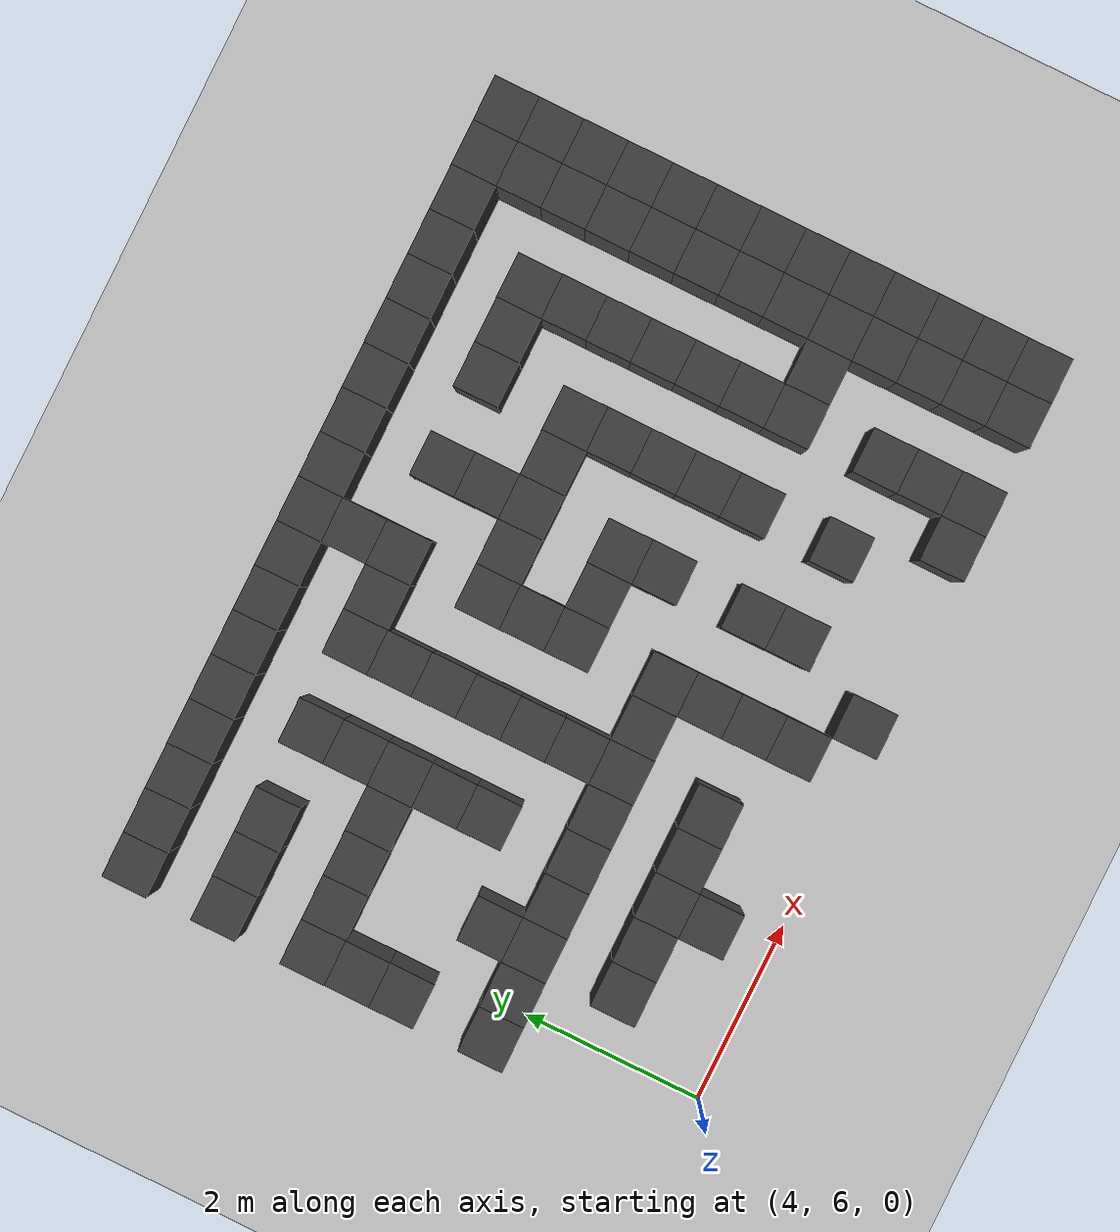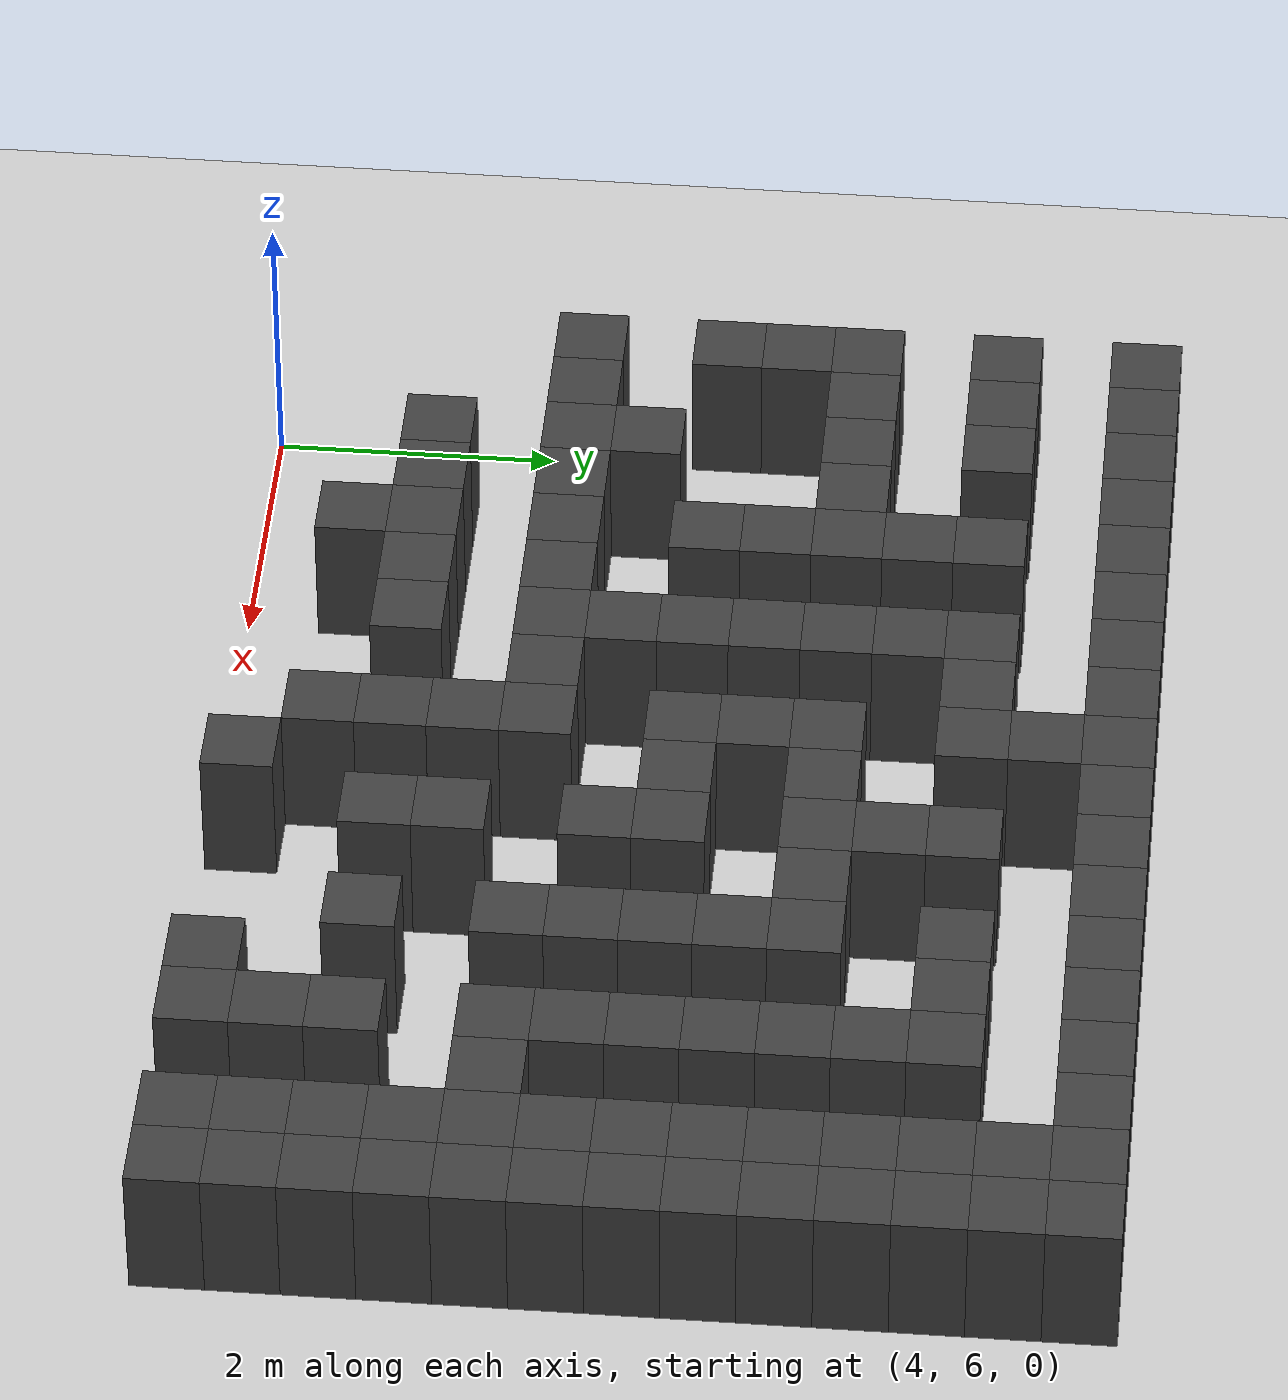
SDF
<sdf version="1.7">
 <world name="map_18347">
  <model name="ground_plane">
   <static>true</static>
   <link name="link">
    <collision name="collision">
     <geometry><plane><normal>0 0 1</normal><size>200 200</size></plane></geometry>
    </collision>
    <visual name="visual">
     <geometry><plane><normal>0 0 1</normal><size>200 200</size></plane></geometry>
     <material><ambient>0.8 0.8 0.8 1</ambient><diffuse>0.8 0.8 0.8 1</diffuse></material>
    </visual>
   </link>
  </model>
  <model name="maze_environment">
   <static>true</static>
   <link name="wall_32">
    <pose>3.750 12.250 0.500 0 0 0</pose>
    <collision name="col"><geometry><box><size>0.5 0.5 1.0</size></box></geometry></collision>
    <visual name="vis">
     <geometry><box><size>0.5 0.5 1.0</size></box></geometry>
     <material><ambient>0.15 0.15 0.15 1</ambient><diffuse>0.25 0.25 0.25 1</diffuse></material>
    </visual>
   </link>
   <link name="wall_33">
    <pose>4.250 12.250 0.500 0 0 0</pose>
    <collision name="col"><geometry><box><size>0.5 0.5 1.0</size></box></geometry></collision>
    <visual name="vis">
     <geometry><box><size>0.5 0.5 1.0</size></box></geometry>
     <material><ambient>0.15 0.15 0.15 1</ambient><diffuse>0.25 0.25 0.25 1</diffuse></material>
    </visual>
   </link>
   <link name="wall_34">
    <pose>4.750 12.250 0.500 0 0 0</pose>
    <collision name="col"><geometry><box><size>0.5 0.5 1.0</size></box></geometry></collision>
    <visual name="vis">
     <geometry><box><size>0.5 0.5 1.0</size></box></geometry>
     <material><ambient>0.15 0.15 0.15 1</ambient><diffuse>0.25 0.25 0.25 1</diffuse></material>
    </visual>
   </link>
   <link name="wall_35">
    <pose>5.250 12.250 0.500 0 0 0</pose>
    <collision name="col"><geometry><box><size>0.5 0.5 1.0</size></box></geometry></collision>
    <visual name="vis">
     <geometry><box><size>0.5 0.5 1.0</size></box></geometry>
     <material><ambient>0.15 0.15 0.15 1</ambient><diffuse>0.25 0.25 0.25 1</diffuse></material>
    </visual>
   </link>
   <link name="wall_36">
    <pose>5.750 12.250 0.500 0 0 0</pose>
    <collision name="col"><geometry><box><size>0.5 0.5 1.0</size></box></geometry></collision>
    <visual name="vis">
     <geometry><box><size>0.5 0.5 1.0</size></box></geometry>
     <material><ambient>0.15 0.15 0.15 1</ambient><diffuse>0.25 0.25 0.25 1</diffuse></material>
    </visual>
   </link>
   <link name="wall_37">
    <pose>6.250 12.250 0.500 0 0 0</pose>
    <collision name="col"><geometry><box><size>0.5 0.5 1.0</size></box></geometry></collision>
    <visual name="vis">
     <geometry><box><size>0.5 0.5 1.0</size></box></geometry>
     <material><ambient>0.15 0.15 0.15 1</ambient><diffuse>0.25 0.25 0.25 1</diffuse></material>
    </visual>
   </link>
   <link name="wall_38">
    <pose>6.750 12.250 0.500 0 0 0</pose>
    <collision name="col"><geometry><box><size>0.5 0.5 1.0</size></box></geometry></collision>
    <visual name="vis">
     <geometry><box><size>0.5 0.5 1.0</size></box></geometry>
     <material><ambient>0.15 0.15 0.15 1</ambient><diffuse>0.25 0.25 0.25 1</diffuse></material>
    </visual>
   </link>
   <link name="wall_39">
    <pose>7.250 12.250 0.500 0 0 0</pose>
    <collision name="col"><geometry><box><size>0.5 0.5 1.0</size></box></geometry></collision>
    <visual name="vis">
     <geometry><box><size>0.5 0.5 1.0</size></box></geometry>
     <material><ambient>0.15 0.15 0.15 1</ambient><diffuse>0.25 0.25 0.25 1</diffuse></material>
    </visual>
   </link>
   <link name="wall_40">
    <pose>7.750 12.250 0.500 0 0 0</pose>
    <collision name="col"><geometry><box><size>0.5 0.5 1.0</size></box></geometry></collision>
    <visual name="vis">
     <geometry><box><size>0.5 0.5 1.0</size></box></geometry>
     <material><ambient>0.15 0.15 0.15 1</ambient><diffuse>0.25 0.25 0.25 1</diffuse></material>
    </visual>
   </link>
   <link name="wall_41">
    <pose>8.250 12.250 0.500 0 0 0</pose>
    <collision name="col"><geometry><box><size>0.5 0.5 1.0</size></box></geometry></collision>
    <visual name="vis">
     <geometry><box><size>0.5 0.5 1.0</size></box></geometry>
     <material><ambient>0.15 0.15 0.15 1</ambient><diffuse>0.25 0.25 0.25 1</diffuse></material>
    </visual>
   </link>
   <link name="wall_42">
    <pose>8.750 12.250 0.500 0 0 0</pose>
    <collision name="col"><geometry><box><size>0.5 0.5 1.0</size></box></geometry></collision>
    <visual name="vis">
     <geometry><box><size>0.5 0.5 1.0</size></box></geometry>
     <material><ambient>0.15 0.15 0.15 1</ambient><diffuse>0.25 0.25 0.25 1</diffuse></material>
    </visual>
   </link>
   <link name="wall_43">
    <pose>9.250 12.250 0.500 0 0 0</pose>
    <collision name="col"><geometry><box><size>0.5 0.5 1.0</size></box></geometry></collision>
    <visual name="vis">
     <geometry><box><size>0.5 0.5 1.0</size></box></geometry>
     <material><ambient>0.15 0.15 0.15 1</ambient><diffuse>0.25 0.25 0.25 1</diffuse></material>
    </visual>
   </link>
   <link name="wall_44">
    <pose>9.750 12.250 0.500 0 0 0</pose>
    <collision name="col"><geometry><box><size>0.5 0.5 1.0</size></box></geometry></collision>
    <visual name="vis">
     <geometry><box><size>0.5 0.5 1.0</size></box></geometry>
     <material><ambient>0.15 0.15 0.15 1</ambient><diffuse>0.25 0.25 0.25 1</diffuse></material>
    </visual>
   </link>
   <link name="wall_45">
    <pose>10.250 12.250 0.500 0 0 0</pose>
    <collision name="col"><geometry><box><size>0.5 0.5 1.0</size></box></geometry></collision>
    <visual name="vis">
     <geometry><box><size>0.5 0.5 1.0</size></box></geometry>
     <material><ambient>0.15 0.15 0.15 1</ambient><diffuse>0.25 0.25 0.25 1</diffuse></material>
    </visual>
   </link>
   <link name="wall_46">
    <pose>10.750 12.250 0.500 0 0 0</pose>
    <collision name="col"><geometry><box><size>0.5 0.5 1.0</size></box></geometry></collision>
    <visual name="vis">
     <geometry><box><size>0.5 0.5 1.0</size></box></geometry>
     <material><ambient>0.15 0.15 0.15 1</ambient><diffuse>0.25 0.25 0.25 1</diffuse></material>
    </visual>
   </link>
   <link name="wall_47">
    <pose>11.250 12.250 0.500 0 0 0</pose>
    <collision name="col"><geometry><box><size>0.5 0.5 1.0</size></box></geometry></collision>
    <visual name="vis">
     <geometry><box><size>0.5 0.5 1.0</size></box></geometry>
     <material><ambient>0.15 0.15 0.15 1</ambient><diffuse>0.25 0.25 0.25 1</diffuse></material>
    </visual>
   </link>
   <link name="wall_48">
    <pose>11.750 12.250 0.500 0 0 0</pose>
    <collision name="col"><geometry><box><size>0.5 0.5 1.0</size></box></geometry></collision>
    <visual name="vis">
     <geometry><box><size>0.5 0.5 1.0</size></box></geometry>
     <material><ambient>0.15 0.15 0.15 1</ambient><diffuse>0.25 0.25 0.25 1</diffuse></material>
    </visual>
   </link>
   <link name="wall_49">
    <pose>12.250 12.250 0.500 0 0 0</pose>
    <collision name="col"><geometry><box><size>0.5 0.5 1.0</size></box></geometry></collision>
    <visual name="vis">
     <geometry><box><size>0.5 0.5 1.0</size></box></geometry>
     <material><ambient>0.15 0.15 0.15 1</ambient><diffuse>0.25 0.25 0.25 1</diffuse></material>
    </visual>
   </link>
   <link name="wall_55">
    <pose>7.750 11.750 0.500 0 0 0</pose>
    <collision name="col"><geometry><box><size>0.5 0.5 1.0</size></box></geometry></collision>
    <visual name="vis">
     <geometry><box><size>0.5 0.5 1.0</size></box></geometry>
     <material><ambient>0.15 0.15 0.15 1</ambient><diffuse>0.25 0.25 0.25 1</diffuse></material>
    </visual>
   </link>
   <link name="wall_56">
    <pose>11.750 11.750 0.500 0 0 0</pose>
    <collision name="col"><geometry><box><size>0.5 0.5 1.0</size></box></geometry></collision>
    <visual name="vis">
     <geometry><box><size>0.5 0.5 1.0</size></box></geometry>
     <material><ambient>0.15 0.15 0.15 1</ambient><diffuse>0.25 0.25 0.25 1</diffuse></material>
    </visual>
   </link>
   <link name="wall_57">
    <pose>12.250 11.750 0.500 0 0 0</pose>
    <collision name="col"><geometry><box><size>0.5 0.5 1.0</size></box></geometry></collision>
    <visual name="vis">
     <geometry><box><size>0.5 0.5 1.0</size></box></geometry>
     <material><ambient>0.15 0.15 0.15 1</ambient><diffuse>0.25 0.25 0.25 1</diffuse></material>
    </visual>
   </link>
   <link name="wall_81">
    <pose>3.750 11.250 0.500 0 0 0</pose>
    <collision name="col"><geometry><box><size>0.5 0.5 1.0</size></box></geometry></collision>
    <visual name="vis">
     <geometry><box><size>0.5 0.5 1.0</size></box></geometry>
     <material><ambient>0.15 0.15 0.15 1</ambient><diffuse>0.25 0.25 0.25 1</diffuse></material>
    </visual>
   </link>
   <link name="wall_82">
    <pose>4.250 11.250 0.500 0 0 0</pose>
    <collision name="col"><geometry><box><size>0.5 0.5 1.0</size></box></geometry></collision>
    <visual name="vis">
     <geometry><box><size>0.5 0.5 1.0</size></box></geometry>
     <material><ambient>0.15 0.15 0.15 1</ambient><diffuse>0.25 0.25 0.25 1</diffuse></material>
    </visual>
   </link>
   <link name="wall_83">
    <pose>4.750 11.250 0.500 0 0 0</pose>
    <collision name="col"><geometry><box><size>0.5 0.5 1.0</size></box></geometry></collision>
    <visual name="vis">
     <geometry><box><size>0.5 0.5 1.0</size></box></geometry>
     <material><ambient>0.15 0.15 0.15 1</ambient><diffuse>0.25 0.25 0.25 1</diffuse></material>
    </visual>
   </link>
   <link name="wall_84">
    <pose>5.750 11.250 0.500 0 0 0</pose>
    <collision name="col"><geometry><box><size>0.5 0.5 1.0</size></box></geometry></collision>
    <visual name="vis">
     <geometry><box><size>0.5 0.5 1.0</size></box></geometry>
     <material><ambient>0.15 0.15 0.15 1</ambient><diffuse>0.25 0.25 0.25 1</diffuse></material>
    </visual>
   </link>
   <link name="wall_85">
    <pose>6.750 11.250 0.500 0 0 0</pose>
    <collision name="col"><geometry><box><size>0.5 0.5 1.0</size></box></geometry></collision>
    <visual name="vis">
     <geometry><box><size>0.5 0.5 1.0</size></box></geometry>
     <material><ambient>0.15 0.15 0.15 1</ambient><diffuse>0.25 0.25 0.25 1</diffuse></material>
    </visual>
   </link>
   <link name="wall_86">
    <pose>7.250 11.250 0.500 0 0 0</pose>
    <collision name="col"><geometry><box><size>0.5 0.5 1.0</size></box></geometry></collision>
    <visual name="vis">
     <geometry><box><size>0.5 0.5 1.0</size></box></geometry>
     <material><ambient>0.15 0.15 0.15 1</ambient><diffuse>0.25 0.25 0.25 1</diffuse></material>
    </visual>
   </link>
   <link name="wall_87">
    <pose>7.750 11.250 0.500 0 0 0</pose>
    <collision name="col"><geometry><box><size>0.5 0.5 1.0</size></box></geometry></collision>
    <visual name="vis">
     <geometry><box><size>0.5 0.5 1.0</size></box></geometry>
     <material><ambient>0.15 0.15 0.15 1</ambient><diffuse>0.25 0.25 0.25 1</diffuse></material>
    </visual>
   </link>
   <link name="wall_88">
    <pose>8.750 11.250 0.500 0 0 0</pose>
    <collision name="col"><geometry><box><size>0.5 0.5 1.0</size></box></geometry></collision>
    <visual name="vis">
     <geometry><box><size>0.5 0.5 1.0</size></box></geometry>
     <material><ambient>0.15 0.15 0.15 1</ambient><diffuse>0.25 0.25 0.25 1</diffuse></material>
    </visual>
   </link>
   <link name="wall_89">
    <pose>9.750 11.250 0.500 0 0 0</pose>
    <collision name="col"><geometry><box><size>0.5 0.5 1.0</size></box></geometry></collision>
    <visual name="vis">
     <geometry><box><size>0.5 0.5 1.0</size></box></geometry>
     <material><ambient>0.15 0.15 0.15 1</ambient><diffuse>0.25 0.25 0.25 1</diffuse></material>
    </visual>
   </link>
   <link name="wall_90">
    <pose>10.250 11.250 0.500 0 0 0</pose>
    <collision name="col"><geometry><box><size>0.5 0.5 1.0</size></box></geometry></collision>
    <visual name="vis">
     <geometry><box><size>0.5 0.5 1.0</size></box></geometry>
     <material><ambient>0.15 0.15 0.15 1</ambient><diffuse>0.25 0.25 0.25 1</diffuse></material>
    </visual>
   </link>
   <link name="wall_91">
    <pose>10.750 11.250 0.500 0 0 0</pose>
    <collision name="col"><geometry><box><size>0.5 0.5 1.0</size></box></geometry></collision>
    <visual name="vis">
     <geometry><box><size>0.5 0.5 1.0</size></box></geometry>
     <material><ambient>0.15 0.15 0.15 1</ambient><diffuse>0.25 0.25 0.25 1</diffuse></material>
    </visual>
   </link>
   <link name="wall_92">
    <pose>11.750 11.250 0.500 0 0 0</pose>
    <collision name="col"><geometry><box><size>0.5 0.5 1.0</size></box></geometry></collision>
    <visual name="vis">
     <geometry><box><size>0.5 0.5 1.0</size></box></geometry>
     <material><ambient>0.15 0.15 0.15 1</ambient><diffuse>0.25 0.25 0.25 1</diffuse></material>
    </visual>
   </link>
   <link name="wall_93">
    <pose>12.250 11.250 0.500 0 0 0</pose>
    <collision name="col"><geometry><box><size>0.5 0.5 1.0</size></box></geometry></collision>
    <visual name="vis">
     <geometry><box><size>0.5 0.5 1.0</size></box></geometry>
     <material><ambient>0.15 0.15 0.15 1</ambient><diffuse>0.25 0.25 0.25 1</diffuse></material>
    </visual>
   </link>
   <link name="wall_100">
    <pose>5.750 10.750 0.500 0 0 0</pose>
    <collision name="col"><geometry><box><size>0.5 0.5 1.0</size></box></geometry></collision>
    <visual name="vis">
     <geometry><box><size>0.5 0.5 1.0</size></box></geometry>
     <material><ambient>0.15 0.15 0.15 1</ambient><diffuse>0.25 0.25 0.25 1</diffuse></material>
    </visual>
   </link>
   <link name="wall_101">
    <pose>6.750 10.750 0.500 0 0 0</pose>
    <collision name="col"><geometry><box><size>0.5 0.5 1.0</size></box></geometry></collision>
    <visual name="vis">
     <geometry><box><size>0.5 0.5 1.0</size></box></geometry>
     <material><ambient>0.15 0.15 0.15 1</ambient><diffuse>0.25 0.25 0.25 1</diffuse></material>
    </visual>
   </link>
   <link name="wall_102">
    <pose>8.750 10.750 0.500 0 0 0</pose>
    <collision name="col"><geometry><box><size>0.5 0.5 1.0</size></box></geometry></collision>
    <visual name="vis">
     <geometry><box><size>0.5 0.5 1.0</size></box></geometry>
     <material><ambient>0.15 0.15 0.15 1</ambient><diffuse>0.25 0.25 0.25 1</diffuse></material>
    </visual>
   </link>
   <link name="wall_103">
    <pose>10.750 10.750 0.500 0 0 0</pose>
    <collision name="col"><geometry><box><size>0.5 0.5 1.0</size></box></geometry></collision>
    <visual name="vis">
     <geometry><box><size>0.5 0.5 1.0</size></box></geometry>
     <material><ambient>0.15 0.15 0.15 1</ambient><diffuse>0.25 0.25 0.25 1</diffuse></material>
    </visual>
   </link>
   <link name="wall_104">
    <pose>11.750 10.750 0.500 0 0 0</pose>
    <collision name="col"><geometry><box><size>0.5 0.5 1.0</size></box></geometry></collision>
    <visual name="vis">
     <geometry><box><size>0.5 0.5 1.0</size></box></geometry>
     <material><ambient>0.15 0.15 0.15 1</ambient><diffuse>0.25 0.25 0.25 1</diffuse></material>
    </visual>
   </link>
   <link name="wall_105">
    <pose>12.250 10.750 0.500 0 0 0</pose>
    <collision name="col"><geometry><box><size>0.5 0.5 1.0</size></box></geometry></collision>
    <visual name="vis">
     <geometry><box><size>0.5 0.5 1.0</size></box></geometry>
     <material><ambient>0.15 0.15 0.15 1</ambient><diffuse>0.25 0.25 0.25 1</diffuse></material>
    </visual>
   </link>
   <link name="wall_130">
    <pose>3.750 10.250 0.500 0 0 0</pose>
    <collision name="col"><geometry><box><size>0.5 0.5 1.0</size></box></geometry></collision>
    <visual name="vis">
     <geometry><box><size>0.5 0.5 1.0</size></box></geometry>
     <material><ambient>0.15 0.15 0.15 1</ambient><diffuse>0.25 0.25 0.25 1</diffuse></material>
    </visual>
   </link>
   <link name="wall_131">
    <pose>4.250 10.250 0.500 0 0 0</pose>
    <collision name="col"><geometry><box><size>0.5 0.5 1.0</size></box></geometry></collision>
    <visual name="vis">
     <geometry><box><size>0.5 0.5 1.0</size></box></geometry>
     <material><ambient>0.15 0.15 0.15 1</ambient><diffuse>0.25 0.25 0.25 1</diffuse></material>
    </visual>
   </link>
   <link name="wall_132">
    <pose>4.750 10.250 0.500 0 0 0</pose>
    <collision name="col"><geometry><box><size>0.5 0.5 1.0</size></box></geometry></collision>
    <visual name="vis">
     <geometry><box><size>0.5 0.5 1.0</size></box></geometry>
     <material><ambient>0.15 0.15 0.15 1</ambient><diffuse>0.25 0.25 0.25 1</diffuse></material>
    </visual>
   </link>
   <link name="wall_133">
    <pose>5.250 10.250 0.500 0 0 0</pose>
    <collision name="col"><geometry><box><size>0.5 0.5 1.0</size></box></geometry></collision>
    <visual name="vis">
     <geometry><box><size>0.5 0.5 1.0</size></box></geometry>
     <material><ambient>0.15 0.15 0.15 1</ambient><diffuse>0.25 0.25 0.25 1</diffuse></material>
    </visual>
   </link>
   <link name="wall_134">
    <pose>5.750 10.250 0.500 0 0 0</pose>
    <collision name="col"><geometry><box><size>0.5 0.5 1.0</size></box></geometry></collision>
    <visual name="vis">
     <geometry><box><size>0.5 0.5 1.0</size></box></geometry>
     <material><ambient>0.15 0.15 0.15 1</ambient><diffuse>0.25 0.25 0.25 1</diffuse></material>
    </visual>
   </link>
   <link name="wall_135">
    <pose>6.750 10.250 0.500 0 0 0</pose>
    <collision name="col"><geometry><box><size>0.5 0.5 1.0</size></box></geometry></collision>
    <visual name="vis">
     <geometry><box><size>0.5 0.5 1.0</size></box></geometry>
     <material><ambient>0.15 0.15 0.15 1</ambient><diffuse>0.25 0.25 0.25 1</diffuse></material>
    </visual>
   </link>
   <link name="wall_136">
    <pose>7.750 10.250 0.500 0 0 0</pose>
    <collision name="col"><geometry><box><size>0.5 0.5 1.0</size></box></geometry></collision>
    <visual name="vis">
     <geometry><box><size>0.5 0.5 1.0</size></box></geometry>
     <material><ambient>0.15 0.15 0.15 1</ambient><diffuse>0.25 0.25 0.25 1</diffuse></material>
    </visual>
   </link>
   <link name="wall_137">
    <pose>8.250 10.250 0.500 0 0 0</pose>
    <collision name="col"><geometry><box><size>0.5 0.5 1.0</size></box></geometry></collision>
    <visual name="vis">
     <geometry><box><size>0.5 0.5 1.0</size></box></geometry>
     <material><ambient>0.15 0.15 0.15 1</ambient><diffuse>0.25 0.25 0.25 1</diffuse></material>
    </visual>
   </link>
   <link name="wall_138">
    <pose>8.750 10.250 0.500 0 0 0</pose>
    <collision name="col"><geometry><box><size>0.5 0.5 1.0</size></box></geometry></collision>
    <visual name="vis">
     <geometry><box><size>0.5 0.5 1.0</size></box></geometry>
     <material><ambient>0.15 0.15 0.15 1</ambient><diffuse>0.25 0.25 0.25 1</diffuse></material>
    </visual>
   </link>
   <link name="wall_139">
    <pose>9.250 10.250 0.500 0 0 0</pose>
    <collision name="col"><geometry><box><size>0.5 0.5 1.0</size></box></geometry></collision>
    <visual name="vis">
     <geometry><box><size>0.5 0.5 1.0</size></box></geometry>
     <material><ambient>0.15 0.15 0.15 1</ambient><diffuse>0.25 0.25 0.25 1</diffuse></material>
    </visual>
   </link>
   <link name="wall_140">
    <pose>9.750 10.250 0.500 0 0 0</pose>
    <collision name="col"><geometry><box><size>0.5 0.5 1.0</size></box></geometry></collision>
    <visual name="vis">
     <geometry><box><size>0.5 0.5 1.0</size></box></geometry>
     <material><ambient>0.15 0.15 0.15 1</ambient><diffuse>0.25 0.25 0.25 1</diffuse></material>
    </visual>
   </link>
   <link name="wall_141">
    <pose>10.750 10.250 0.500 0 0 0</pose>
    <collision name="col"><geometry><box><size>0.5 0.5 1.0</size></box></geometry></collision>
    <visual name="vis">
     <geometry><box><size>0.5 0.5 1.0</size></box></geometry>
     <material><ambient>0.15 0.15 0.15 1</ambient><diffuse>0.25 0.25 0.25 1</diffuse></material>
    </visual>
   </link>
   <link name="wall_142">
    <pose>11.750 10.250 0.500 0 0 0</pose>
    <collision name="col"><geometry><box><size>0.5 0.5 1.0</size></box></geometry></collision>
    <visual name="vis">
     <geometry><box><size>0.5 0.5 1.0</size></box></geometry>
     <material><ambient>0.15 0.15 0.15 1</ambient><diffuse>0.25 0.25 0.25 1</diffuse></material>
    </visual>
   </link>
   <link name="wall_143">
    <pose>12.250 10.250 0.500 0 0 0</pose>
    <collision name="col"><geometry><box><size>0.5 0.5 1.0</size></box></geometry></collision>
    <visual name="vis">
     <geometry><box><size>0.5 0.5 1.0</size></box></geometry>
     <material><ambient>0.15 0.15 0.15 1</ambient><diffuse>0.25 0.25 0.25 1</diffuse></material>
    </visual>
   </link>
   <link name="wall_153">
    <pose>3.750 9.750 0.500 0 0 0</pose>
    <collision name="col"><geometry><box><size>0.5 0.5 1.0</size></box></geometry></collision>
    <visual name="vis">
     <geometry><box><size>0.5 0.5 1.0</size></box></geometry>
     <material><ambient>0.15 0.15 0.15 1</ambient><diffuse>0.25 0.25 0.25 1</diffuse></material>
    </visual>
   </link>
   <link name="wall_154">
    <pose>5.750 9.750 0.500 0 0 0</pose>
    <collision name="col"><geometry><box><size>0.5 0.5 1.0</size></box></geometry></collision>
    <visual name="vis">
     <geometry><box><size>0.5 0.5 1.0</size></box></geometry>
     <material><ambient>0.15 0.15 0.15 1</ambient><diffuse>0.25 0.25 0.25 1</diffuse></material>
    </visual>
   </link>
   <link name="wall_155">
    <pose>6.750 9.750 0.500 0 0 0</pose>
    <collision name="col"><geometry><box><size>0.5 0.5 1.0</size></box></geometry></collision>
    <visual name="vis">
     <geometry><box><size>0.5 0.5 1.0</size></box></geometry>
     <material><ambient>0.15 0.15 0.15 1</ambient><diffuse>0.25 0.25 0.25 1</diffuse></material>
    </visual>
   </link>
   <link name="wall_156">
    <pose>7.750 9.750 0.500 0 0 0</pose>
    <collision name="col"><geometry><box><size>0.5 0.5 1.0</size></box></geometry></collision>
    <visual name="vis">
     <geometry><box><size>0.5 0.5 1.0</size></box></geometry>
     <material><ambient>0.15 0.15 0.15 1</ambient><diffuse>0.25 0.25 0.25 1</diffuse></material>
    </visual>
   </link>
   <link name="wall_157">
    <pose>9.750 9.750 0.500 0 0 0</pose>
    <collision name="col"><geometry><box><size>0.5 0.5 1.0</size></box></geometry></collision>
    <visual name="vis">
     <geometry><box><size>0.5 0.5 1.0</size></box></geometry>
     <material><ambient>0.15 0.15 0.15 1</ambient><diffuse>0.25 0.25 0.25 1</diffuse></material>
    </visual>
   </link>
   <link name="wall_158">
    <pose>10.750 9.750 0.500 0 0 0</pose>
    <collision name="col"><geometry><box><size>0.5 0.5 1.0</size></box></geometry></collision>
    <visual name="vis">
     <geometry><box><size>0.5 0.5 1.0</size></box></geometry>
     <material><ambient>0.15 0.15 0.15 1</ambient><diffuse>0.25 0.25 0.25 1</diffuse></material>
    </visual>
   </link>
   <link name="wall_159">
    <pose>11.750 9.750 0.500 0 0 0</pose>
    <collision name="col"><geometry><box><size>0.5 0.5 1.0</size></box></geometry></collision>
    <visual name="vis">
     <geometry><box><size>0.5 0.5 1.0</size></box></geometry>
     <material><ambient>0.15 0.15 0.15 1</ambient><diffuse>0.25 0.25 0.25 1</diffuse></material>
    </visual>
   </link>
   <link name="wall_160">
    <pose>12.250 9.750 0.500 0 0 0</pose>
    <collision name="col"><geometry><box><size>0.5 0.5 1.0</size></box></geometry></collision>
    <visual name="vis">
     <geometry><box><size>0.5 0.5 1.0</size></box></geometry>
     <material><ambient>0.15 0.15 0.15 1</ambient><diffuse>0.25 0.25 0.25 1</diffuse></material>
    </visual>
   </link>
   <link name="wall_180">
    <pose>3.750 9.250 0.500 0 0 0</pose>
    <collision name="col"><geometry><box><size>0.5 0.5 1.0</size></box></geometry></collision>
    <visual name="vis">
     <geometry><box><size>0.5 0.5 1.0</size></box></geometry>
     <material><ambient>0.15 0.15 0.15 1</ambient><diffuse>0.25 0.25 0.25 1</diffuse></material>
    </visual>
   </link>
   <link name="wall_181">
    <pose>5.750 9.250 0.500 0 0 0</pose>
    <collision name="col"><geometry><box><size>0.5 0.5 1.0</size></box></geometry></collision>
    <visual name="vis">
     <geometry><box><size>0.5 0.5 1.0</size></box></geometry>
     <material><ambient>0.15 0.15 0.15 1</ambient><diffuse>0.25 0.25 0.25 1</diffuse></material>
    </visual>
   </link>
   <link name="wall_182">
    <pose>6.750 9.250 0.500 0 0 0</pose>
    <collision name="col"><geometry><box><size>0.5 0.5 1.0</size></box></geometry></collision>
    <visual name="vis">
     <geometry><box><size>0.5 0.5 1.0</size></box></geometry>
     <material><ambient>0.15 0.15 0.15 1</ambient><diffuse>0.25 0.25 0.25 1</diffuse></material>
    </visual>
   </link>
   <link name="wall_183">
    <pose>7.750 9.250 0.500 0 0 0</pose>
    <collision name="col"><geometry><box><size>0.5 0.5 1.0</size></box></geometry></collision>
    <visual name="vis">
     <geometry><box><size>0.5 0.5 1.0</size></box></geometry>
     <material><ambient>0.15 0.15 0.15 1</ambient><diffuse>0.25 0.25 0.25 1</diffuse></material>
    </visual>
   </link>
   <link name="wall_184">
    <pose>8.250 9.250 0.500 0 0 0</pose>
    <collision name="col"><geometry><box><size>0.5 0.5 1.0</size></box></geometry></collision>
    <visual name="vis">
     <geometry><box><size>0.5 0.5 1.0</size></box></geometry>
     <material><ambient>0.15 0.15 0.15 1</ambient><diffuse>0.25 0.25 0.25 1</diffuse></material>
    </visual>
   </link>
   <link name="wall_185">
    <pose>8.750 9.250 0.500 0 0 0</pose>
    <collision name="col"><geometry><box><size>0.5 0.5 1.0</size></box></geometry></collision>
    <visual name="vis">
     <geometry><box><size>0.5 0.5 1.0</size></box></geometry>
     <material><ambient>0.15 0.15 0.15 1</ambient><diffuse>0.25 0.25 0.25 1</diffuse></material>
    </visual>
   </link>
   <link name="wall_186">
    <pose>9.750 9.250 0.500 0 0 0</pose>
    <collision name="col"><geometry><box><size>0.5 0.5 1.0</size></box></geometry></collision>
    <visual name="vis">
     <geometry><box><size>0.5 0.5 1.0</size></box></geometry>
     <material><ambient>0.15 0.15 0.15 1</ambient><diffuse>0.25 0.25 0.25 1</diffuse></material>
    </visual>
   </link>
   <link name="wall_187">
    <pose>10.750 9.250 0.500 0 0 0</pose>
    <collision name="col"><geometry><box><size>0.5 0.5 1.0</size></box></geometry></collision>
    <visual name="vis">
     <geometry><box><size>0.5 0.5 1.0</size></box></geometry>
     <material><ambient>0.15 0.15 0.15 1</ambient><diffuse>0.25 0.25 0.25 1</diffuse></material>
    </visual>
   </link>
   <link name="wall_188">
    <pose>11.750 9.250 0.500 0 0 0</pose>
    <collision name="col"><geometry><box><size>0.5 0.5 1.0</size></box></geometry></collision>
    <visual name="vis">
     <geometry><box><size>0.5 0.5 1.0</size></box></geometry>
     <material><ambient>0.15 0.15 0.15 1</ambient><diffuse>0.25 0.25 0.25 1</diffuse></material>
    </visual>
   </link>
   <link name="wall_189">
    <pose>12.250 9.250 0.500 0 0 0</pose>
    <collision name="col"><geometry><box><size>0.5 0.5 1.0</size></box></geometry></collision>
    <visual name="vis">
     <geometry><box><size>0.5 0.5 1.0</size></box></geometry>
     <material><ambient>0.15 0.15 0.15 1</ambient><diffuse>0.25 0.25 0.25 1</diffuse></material>
    </visual>
   </link>
   <link name="wall_199">
    <pose>4.750 8.750 0.500 0 0 0</pose>
    <collision name="col"><geometry><box><size>0.5 0.5 1.0</size></box></geometry></collision>
    <visual name="vis">
     <geometry><box><size>0.5 0.5 1.0</size></box></geometry>
     <material><ambient>0.15 0.15 0.15 1</ambient><diffuse>0.25 0.25 0.25 1</diffuse></material>
    </visual>
   </link>
   <link name="wall_200">
    <pose>6.750 8.750 0.500 0 0 0</pose>
    <collision name="col"><geometry><box><size>0.5 0.5 1.0</size></box></geometry></collision>
    <visual name="vis">
     <geometry><box><size>0.5 0.5 1.0</size></box></geometry>
     <material><ambient>0.15 0.15 0.15 1</ambient><diffuse>0.25 0.25 0.25 1</diffuse></material>
    </visual>
   </link>
   <link name="wall_201">
    <pose>8.750 8.750 0.500 0 0 0</pose>
    <collision name="col"><geometry><box><size>0.5 0.5 1.0</size></box></geometry></collision>
    <visual name="vis">
     <geometry><box><size>0.5 0.5 1.0</size></box></geometry>
     <material><ambient>0.15 0.15 0.15 1</ambient><diffuse>0.25 0.25 0.25 1</diffuse></material>
    </visual>
   </link>
   <link name="wall_202">
    <pose>9.750 8.750 0.500 0 0 0</pose>
    <collision name="col"><geometry><box><size>0.5 0.5 1.0</size></box></geometry></collision>
    <visual name="vis">
     <geometry><box><size>0.5 0.5 1.0</size></box></geometry>
     <material><ambient>0.15 0.15 0.15 1</ambient><diffuse>0.25 0.25 0.25 1</diffuse></material>
    </visual>
   </link>
   <link name="wall_203">
    <pose>10.750 8.750 0.500 0 0 0</pose>
    <collision name="col"><geometry><box><size>0.5 0.5 1.0</size></box></geometry></collision>
    <visual name="vis">
     <geometry><box><size>0.5 0.5 1.0</size></box></geometry>
     <material><ambient>0.15 0.15 0.15 1</ambient><diffuse>0.25 0.25 0.25 1</diffuse></material>
    </visual>
   </link>
   <link name="wall_204">
    <pose>11.750 8.750 0.500 0 0 0</pose>
    <collision name="col"><geometry><box><size>0.5 0.5 1.0</size></box></geometry></collision>
    <visual name="vis">
     <geometry><box><size>0.5 0.5 1.0</size></box></geometry>
     <material><ambient>0.15 0.15 0.15 1</ambient><diffuse>0.25 0.25 0.25 1</diffuse></material>
    </visual>
   </link>
   <link name="wall_205">
    <pose>12.250 8.750 0.500 0 0 0</pose>
    <collision name="col"><geometry><box><size>0.5 0.5 1.0</size></box></geometry></collision>
    <visual name="vis">
     <geometry><box><size>0.5 0.5 1.0</size></box></geometry>
     <material><ambient>0.15 0.15 0.15 1</ambient><diffuse>0.25 0.25 0.25 1</diffuse></material>
    </visual>
   </link>
   <link name="wall_227">
    <pose>3.750 8.250 0.500 0 0 0</pose>
    <collision name="col"><geometry><box><size>0.5 0.5 1.0</size></box></geometry></collision>
    <visual name="vis">
     <geometry><box><size>0.5 0.5 1.0</size></box></geometry>
     <material><ambient>0.15 0.15 0.15 1</ambient><diffuse>0.25 0.25 0.25 1</diffuse></material>
    </visual>
   </link>
   <link name="wall_228">
    <pose>4.250 8.250 0.500 0 0 0</pose>
    <collision name="col"><geometry><box><size>0.5 0.5 1.0</size></box></geometry></collision>
    <visual name="vis">
     <geometry><box><size>0.5 0.5 1.0</size></box></geometry>
     <material><ambient>0.15 0.15 0.15 1</ambient><diffuse>0.25 0.25 0.25 1</diffuse></material>
    </visual>
   </link>
   <link name="wall_229">
    <pose>4.750 8.250 0.500 0 0 0</pose>
    <collision name="col"><geometry><box><size>0.5 0.5 1.0</size></box></geometry></collision>
    <visual name="vis">
     <geometry><box><size>0.5 0.5 1.0</size></box></geometry>
     <material><ambient>0.15 0.15 0.15 1</ambient><diffuse>0.25 0.25 0.25 1</diffuse></material>
    </visual>
   </link>
   <link name="wall_230">
    <pose>5.250 8.250 0.500 0 0 0</pose>
    <collision name="col"><geometry><box><size>0.5 0.5 1.0</size></box></geometry></collision>
    <visual name="vis">
     <geometry><box><size>0.5 0.5 1.0</size></box></geometry>
     <material><ambient>0.15 0.15 0.15 1</ambient><diffuse>0.25 0.25 0.25 1</diffuse></material>
    </visual>
   </link>
   <link name="wall_231">
    <pose>5.750 8.250 0.500 0 0 0</pose>
    <collision name="col"><geometry><box><size>0.5 0.5 1.0</size></box></geometry></collision>
    <visual name="vis">
     <geometry><box><size>0.5 0.5 1.0</size></box></geometry>
     <material><ambient>0.15 0.15 0.15 1</ambient><diffuse>0.25 0.25 0.25 1</diffuse></material>
    </visual>
   </link>
   <link name="wall_232">
    <pose>6.250 8.250 0.500 0 0 0</pose>
    <collision name="col"><geometry><box><size>0.5 0.5 1.0</size></box></geometry></collision>
    <visual name="vis">
     <geometry><box><size>0.5 0.5 1.0</size></box></geometry>
     <material><ambient>0.15 0.15 0.15 1</ambient><diffuse>0.25 0.25 0.25 1</diffuse></material>
    </visual>
   </link>
   <link name="wall_233">
    <pose>6.750 8.250 0.500 0 0 0</pose>
    <collision name="col"><geometry><box><size>0.5 0.5 1.0</size></box></geometry></collision>
    <visual name="vis">
     <geometry><box><size>0.5 0.5 1.0</size></box></geometry>
     <material><ambient>0.15 0.15 0.15 1</ambient><diffuse>0.25 0.25 0.25 1</diffuse></material>
    </visual>
   </link>
   <link name="wall_234">
    <pose>7.250 8.250 0.500 0 0 0</pose>
    <collision name="col"><geometry><box><size>0.5 0.5 1.0</size></box></geometry></collision>
    <visual name="vis">
     <geometry><box><size>0.5 0.5 1.0</size></box></geometry>
     <material><ambient>0.15 0.15 0.15 1</ambient><diffuse>0.25 0.25 0.25 1</diffuse></material>
    </visual>
   </link>
   <link name="wall_235">
    <pose>7.750 8.250 0.500 0 0 0</pose>
    <collision name="col"><geometry><box><size>0.5 0.5 1.0</size></box></geometry></collision>
    <visual name="vis">
     <geometry><box><size>0.5 0.5 1.0</size></box></geometry>
     <material><ambient>0.15 0.15 0.15 1</ambient><diffuse>0.25 0.25 0.25 1</diffuse></material>
    </visual>
   </link>
   <link name="wall_236">
    <pose>9.750 8.250 0.500 0 0 0</pose>
    <collision name="col"><geometry><box><size>0.5 0.5 1.0</size></box></geometry></collision>
    <visual name="vis">
     <geometry><box><size>0.5 0.5 1.0</size></box></geometry>
     <material><ambient>0.15 0.15 0.15 1</ambient><diffuse>0.25 0.25 0.25 1</diffuse></material>
    </visual>
   </link>
   <link name="wall_237">
    <pose>10.750 8.250 0.500 0 0 0</pose>
    <collision name="col"><geometry><box><size>0.5 0.5 1.0</size></box></geometry></collision>
    <visual name="vis">
     <geometry><box><size>0.5 0.5 1.0</size></box></geometry>
     <material><ambient>0.15 0.15 0.15 1</ambient><diffuse>0.25 0.25 0.25 1</diffuse></material>
    </visual>
   </link>
   <link name="wall_238">
    <pose>11.250 8.250 0.500 0 0 0</pose>
    <collision name="col"><geometry><box><size>0.5 0.5 1.0</size></box></geometry></collision>
    <visual name="vis">
     <geometry><box><size>0.5 0.5 1.0</size></box></geometry>
     <material><ambient>0.15 0.15 0.15 1</ambient><diffuse>0.25 0.25 0.25 1</diffuse></material>
    </visual>
   </link>
   <link name="wall_239">
    <pose>11.750 8.250 0.500 0 0 0</pose>
    <collision name="col"><geometry><box><size>0.5 0.5 1.0</size></box></geometry></collision>
    <visual name="vis">
     <geometry><box><size>0.5 0.5 1.0</size></box></geometry>
     <material><ambient>0.15 0.15 0.15 1</ambient><diffuse>0.25 0.25 0.25 1</diffuse></material>
    </visual>
   </link>
   <link name="wall_240">
    <pose>12.250 8.250 0.500 0 0 0</pose>
    <collision name="col"><geometry><box><size>0.5 0.5 1.0</size></box></geometry></collision>
    <visual name="vis">
     <geometry><box><size>0.5 0.5 1.0</size></box></geometry>
     <material><ambient>0.15 0.15 0.15 1</ambient><diffuse>0.25 0.25 0.25 1</diffuse></material>
    </visual>
   </link>
   <link name="wall_252">
    <pose>7.750 7.750 0.500 0 0 0</pose>
    <collision name="col"><geometry><box><size>0.5 0.5 1.0</size></box></geometry></collision>
    <visual name="vis">
     <geometry><box><size>0.5 0.5 1.0</size></box></geometry>
     <material><ambient>0.15 0.15 0.15 1</ambient><diffuse>0.25 0.25 0.25 1</diffuse></material>
    </visual>
   </link>
   <link name="wall_253">
    <pose>8.750 7.750 0.500 0 0 0</pose>
    <collision name="col"><geometry><box><size>0.5 0.5 1.0</size></box></geometry></collision>
    <visual name="vis">
     <geometry><box><size>0.5 0.5 1.0</size></box></geometry>
     <material><ambient>0.15 0.15 0.15 1</ambient><diffuse>0.25 0.25 0.25 1</diffuse></material>
    </visual>
   </link>
   <link name="wall_254">
    <pose>11.750 7.750 0.500 0 0 0</pose>
    <collision name="col"><geometry><box><size>0.5 0.5 1.0</size></box></geometry></collision>
    <visual name="vis">
     <geometry><box><size>0.5 0.5 1.0</size></box></geometry>
     <material><ambient>0.15 0.15 0.15 1</ambient><diffuse>0.25 0.25 0.25 1</diffuse></material>
    </visual>
   </link>
   <link name="wall_255">
    <pose>12.250 7.750 0.500 0 0 0</pose>
    <collision name="col"><geometry><box><size>0.5 0.5 1.0</size></box></geometry></collision>
    <visual name="vis">
     <geometry><box><size>0.5 0.5 1.0</size></box></geometry>
     <material><ambient>0.15 0.15 0.15 1</ambient><diffuse>0.25 0.25 0.25 1</diffuse></material>
    </visual>
   </link>
   <link name="wall_280">
    <pose>4.750 7.250 0.500 0 0 0</pose>
    <collision name="col"><geometry><box><size>0.5 0.5 1.0</size></box></geometry></collision>
    <visual name="vis">
     <geometry><box><size>0.5 0.5 1.0</size></box></geometry>
     <material><ambient>0.15 0.15 0.15 1</ambient><diffuse>0.25 0.25 0.25 1</diffuse></material>
    </visual>
   </link>
   <link name="wall_281">
    <pose>5.250 7.250 0.500 0 0 0</pose>
    <collision name="col"><geometry><box><size>0.5 0.5 1.0</size></box></geometry></collision>
    <visual name="vis">
     <geometry><box><size>0.5 0.5 1.0</size></box></geometry>
     <material><ambient>0.15 0.15 0.15 1</ambient><diffuse>0.25 0.25 0.25 1</diffuse></material>
    </visual>
   </link>
   <link name="wall_282">
    <pose>5.750 7.250 0.500 0 0 0</pose>
    <collision name="col"><geometry><box><size>0.5 0.5 1.0</size></box></geometry></collision>
    <visual name="vis">
     <geometry><box><size>0.5 0.5 1.0</size></box></geometry>
     <material><ambient>0.15 0.15 0.15 1</ambient><diffuse>0.25 0.25 0.25 1</diffuse></material>
    </visual>
   </link>
   <link name="wall_283">
    <pose>6.250 7.250 0.500 0 0 0</pose>
    <collision name="col"><geometry><box><size>0.5 0.5 1.0</size></box></geometry></collision>
    <visual name="vis">
     <geometry><box><size>0.5 0.5 1.0</size></box></geometry>
     <material><ambient>0.15 0.15 0.15 1</ambient><diffuse>0.25 0.25 0.25 1</diffuse></material>
    </visual>
   </link>
   <link name="wall_284">
    <pose>6.750 7.250 0.500 0 0 0</pose>
    <collision name="col"><geometry><box><size>0.5 0.5 1.0</size></box></geometry></collision>
    <visual name="vis">
     <geometry><box><size>0.5 0.5 1.0</size></box></geometry>
     <material><ambient>0.15 0.15 0.15 1</ambient><diffuse>0.25 0.25 0.25 1</diffuse></material>
    </visual>
   </link>
   <link name="wall_285">
    <pose>7.750 7.250 0.500 0 0 0</pose>
    <collision name="col"><geometry><box><size>0.5 0.5 1.0</size></box></geometry></collision>
    <visual name="vis">
     <geometry><box><size>0.5 0.5 1.0</size></box></geometry>
     <material><ambient>0.15 0.15 0.15 1</ambient><diffuse>0.25 0.25 0.25 1</diffuse></material>
    </visual>
   </link>
   <link name="wall_286">
    <pose>8.750 7.250 0.500 0 0 0</pose>
    <collision name="col"><geometry><box><size>0.5 0.5 1.0</size></box></geometry></collision>
    <visual name="vis">
     <geometry><box><size>0.5 0.5 1.0</size></box></geometry>
     <material><ambient>0.15 0.15 0.15 1</ambient><diffuse>0.25 0.25 0.25 1</diffuse></material>
    </visual>
   </link>
   <link name="wall_287">
    <pose>9.750 7.250 0.500 0 0 0</pose>
    <collision name="col"><geometry><box><size>0.5 0.5 1.0</size></box></geometry></collision>
    <visual name="vis">
     <geometry><box><size>0.5 0.5 1.0</size></box></geometry>
     <material><ambient>0.15 0.15 0.15 1</ambient><diffuse>0.25 0.25 0.25 1</diffuse></material>
    </visual>
   </link>
   <link name="wall_288">
    <pose>10.750 7.250 0.500 0 0 0</pose>
    <collision name="col"><geometry><box><size>0.5 0.5 1.0</size></box></geometry></collision>
    <visual name="vis">
     <geometry><box><size>0.5 0.5 1.0</size></box></geometry>
     <material><ambient>0.15 0.15 0.15 1</ambient><diffuse>0.25 0.25 0.25 1</diffuse></material>
    </visual>
   </link>
   <link name="wall_289">
    <pose>11.750 7.250 0.500 0 0 0</pose>
    <collision name="col"><geometry><box><size>0.5 0.5 1.0</size></box></geometry></collision>
    <visual name="vis">
     <geometry><box><size>0.5 0.5 1.0</size></box></geometry>
     <material><ambient>0.15 0.15 0.15 1</ambient><diffuse>0.25 0.25 0.25 1</diffuse></material>
    </visual>
   </link>
   <link name="wall_290">
    <pose>12.250 7.250 0.500 0 0 0</pose>
    <collision name="col"><geometry><box><size>0.5 0.5 1.0</size></box></geometry></collision>
    <visual name="vis">
     <geometry><box><size>0.5 0.5 1.0</size></box></geometry>
     <material><ambient>0.15 0.15 0.15 1</ambient><diffuse>0.25 0.25 0.25 1</diffuse></material>
    </visual>
   </link>
   <link name="wall_299">
    <pose>5.750 6.750 0.500 0 0 0</pose>
    <collision name="col"><geometry><box><size>0.5 0.5 1.0</size></box></geometry></collision>
    <visual name="vis">
     <geometry><box><size>0.5 0.5 1.0</size></box></geometry>
     <material><ambient>0.15 0.15 0.15 1</ambient><diffuse>0.25 0.25 0.25 1</diffuse></material>
    </visual>
   </link>
   <link name="wall_300">
    <pose>7.750 6.750 0.500 0 0 0</pose>
    <collision name="col"><geometry><box><size>0.5 0.5 1.0</size></box></geometry></collision>
    <visual name="vis">
     <geometry><box><size>0.5 0.5 1.0</size></box></geometry>
     <material><ambient>0.15 0.15 0.15 1</ambient><diffuse>0.25 0.25 0.25 1</diffuse></material>
    </visual>
   </link>
   <link name="wall_301">
    <pose>10.750 6.750 0.500 0 0 0</pose>
    <collision name="col"><geometry><box><size>0.5 0.5 1.0</size></box></geometry></collision>
    <visual name="vis">
     <geometry><box><size>0.5 0.5 1.0</size></box></geometry>
     <material><ambient>0.15 0.15 0.15 1</ambient><diffuse>0.25 0.25 0.25 1</diffuse></material>
    </visual>
   </link>
   <link name="wall_302">
    <pose>11.750 6.750 0.500 0 0 0</pose>
    <collision name="col"><geometry><box><size>0.5 0.5 1.0</size></box></geometry></collision>
    <visual name="vis">
     <geometry><box><size>0.5 0.5 1.0</size></box></geometry>
     <material><ambient>0.15 0.15 0.15 1</ambient><diffuse>0.25 0.25 0.25 1</diffuse></material>
    </visual>
   </link>
   <link name="wall_303">
    <pose>12.250 6.750 0.500 0 0 0</pose>
    <collision name="col"><geometry><box><size>0.5 0.5 1.0</size></box></geometry></collision>
    <visual name="vis">
     <geometry><box><size>0.5 0.5 1.0</size></box></geometry>
     <material><ambient>0.15 0.15 0.15 1</ambient><diffuse>0.25 0.25 0.25 1</diffuse></material>
    </visual>
   </link>
   <link name="wall_334">
    <pose>8.250 6.250 0.500 0 0 0</pose>
    <collision name="col"><geometry><box><size>0.5 0.5 1.0</size></box></geometry></collision>
    <visual name="vis">
     <geometry><box><size>0.5 0.5 1.0</size></box></geometry>
     <material><ambient>0.15 0.15 0.15 1</ambient><diffuse>0.25 0.25 0.25 1</diffuse></material>
    </visual>
   </link>
   <link name="wall_335">
    <pose>10.250 6.250 0.500 0 0 0</pose>
    <collision name="col"><geometry><box><size>0.5 0.5 1.0</size></box></geometry></collision>
    <visual name="vis">
     <geometry><box><size>0.5 0.5 1.0</size></box></geometry>
     <material><ambient>0.15 0.15 0.15 1</ambient><diffuse>0.25 0.25 0.25 1</diffuse></material>
    </visual>
   </link>
   <link name="wall_336">
    <pose>10.750 6.250 0.500 0 0 0</pose>
    <collision name="col"><geometry><box><size>0.5 0.5 1.0</size></box></geometry></collision>
    <visual name="vis">
     <geometry><box><size>0.5 0.5 1.0</size></box></geometry>
     <material><ambient>0.15 0.15 0.15 1</ambient><diffuse>0.25 0.25 0.25 1</diffuse></material>
    </visual>
   </link>
   <link name="wall_337">
    <pose>11.750 6.250 0.500 0 0 0</pose>
    <collision name="col"><geometry><box><size>0.5 0.5 1.0</size></box></geometry></collision>
    <visual name="vis">
     <geometry><box><size>0.5 0.5 1.0</size></box></geometry>
     <material><ambient>0.15 0.15 0.15 1</ambient><diffuse>0.25 0.25 0.25 1</diffuse></material>
    </visual>
   </link>
   <link name="wall_338">
    <pose>12.250 6.250 0.500 0 0 0</pose>
    <collision name="col"><geometry><box><size>0.5 0.5 1.0</size></box></geometry></collision>
    <visual name="vis">
     <geometry><box><size>0.5 0.5 1.0</size></box></geometry>
     <material><ambient>0.15 0.15 0.15 1</ambient><diffuse>0.25 0.25 0.25 1</diffuse></material>
    </visual>
   </link>
  </model>
 </world>
</sdf>
